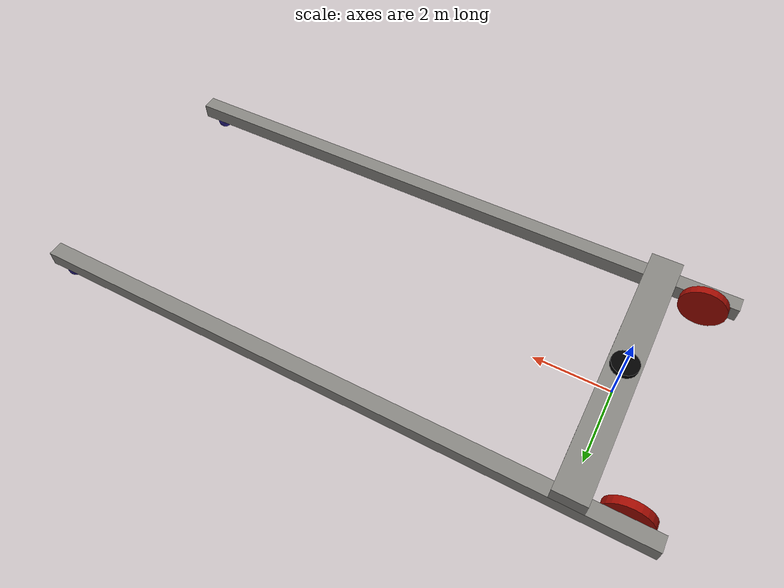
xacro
<?xml version="1.0"?>
<robot xmlns:xacro="http://www.ros.org/wiki/xacro">
  <link name="base_footprint"></link>
  <joint name="base_joint" type="fixed">
    <parent link="base_footprint" />
    <child link="base_link" />
    <origin xyz="0 0 1" rpy="0 0 0" />
  </joint>
  <link name="base_link">
    <visual>
      <origin xyz="0 0 0" rpy="0 0 0" />
      <geometry>
        <box size="0.8 7 0.4" />
      </geometry>
      <material name="base_link-material">
        <color rgba="0.5271151256969157 0.5209955731953768 0.5028864580233624 1" />
      </material>
    </visual>
    <collision>
      <origin xyz="0 0 0" rpy="0 0 0" />
      <geometry>
        <box size="0.8 7 0.4" />
      </geometry>
    </collision>
    <inertial>
      <origin xyz="0 0 0" rpy="0 0 0" />
      <mass value="1" />
      <inertia ixx="0.16666666666666666" ixy="0" ixz="0" iyy="0.16666666666666666" iyz="0" izz="0.16666666666666666" />
    </inertial>
  </link>
  <joint name="base_link_to_lidar" type="fixed">
    <parent link="base_link" />
    <child link="lidar" />
    <origin xyz="0 0 0.2569669071788341" rpy="0 0 0" />
  </joint>
  <link name="lidar">
    <visual>
      <origin xyz="0 0 0" rpy="0 0 0" />
      <geometry>
        <cylinder radius="0.333099402958804" length="0.13538975482266932" />
      </geometry>
      <material name="lidar-material">
        <color rgba="0 0 0 1" />
      </material>
    </visual>
    <collision>
      <origin xyz="0 0 0" rpy="0 0 0" />
      <geometry>
        <cylinder radius="0.333099402958804" length="0.13538975482266932" />
      </geometry>
    </collision>
    <inertial>
      <origin xyz="0 0 0" rpy="0 0 0" />
      <mass value="1" />
      <inertia ixx="0.3333333333333333" ixy="0" ixz="0" iyy="0.5" iyz="0" izz="0.3333333333333333" />
    </inertial>

        <sensor type="lidar" name="lidar">
            <always_on>true</always_on>
            <update_rate>5</update_rate>
            <origin>0 0 0.2569669071788341 0 0 0</origin>
            <ray>
                <scan>
                    <horizontal>
                        <samples>360</samples>
                        <resolution>1</resolution>
                        <min_angle>0</min_angle>
                        <max_angle>6.28</max_angle>
                    </horizontal>
                    <range>
                        <min>0.12</min>
                        <max>3.5</max>
                        <resolution>0.015</resolution>
                    </range>
                </scan>
                <noise>
                    <type>gaussian</type>
                    <mean>0</mean>
                    <stddev>0.01</stddev>
                </noise>
            </ray>
        </sensor>
      </link>
  <joint name="base_link_to_wheel_right" type="continuous">
    <parent link="base_link" />
    <child link="wheel_right" />
    <origin xyz="-1.2 3 -0.4" rpy="1.5707963267948963 0 0" />
    <axis xyz="0 0 1"/>
  </joint>
  <link name="wheel_right">
    <visual>
      <origin xyz="0 0 0" rpy="0 0 0" />
      <geometry>
        <cylinder radius="0.6" length="0.2" />
      </geometry>
      <material name="wheel_right-material">
        <color rgba="0.6375968739867731 0.04373502925049377 0.008023192982520563 1" />
      </material>
    </visual>
    <collision>
      <origin xyz="0 0 0" rpy="0 0 0" />
      <geometry>
        <cylinder radius="0.6" length="0.2" />
      </geometry>
    </collision>
    <inertial>
      <origin xyz="0 0 0" rpy="0 0 0" />
      <mass value="1" />
      <inertia ixx="0.3333333333333333" ixy="0" ixz="0" iyy="0.5" iyz="0" izz="0.3333333333333333" />
    </inertial>
  </link>
  <joint name="base_link_to_omniwheel" type="fixed">
    <parent link="base_link" />
    <child link="omniwheel" />
    <origin xyz="13.5 -3.3 -0.7" rpy="0 0 0" />
  </joint>
  <link name="omniwheel">
    <visual>
      <origin xyz="0 0 0" rpy="0 0 0" />
      <geometry>
        <sphere radius="0.2" />
      </geometry>
      <material name="omniwheel-material">
        <color rgba="0.14702726648767014 0.10461648408208657 0.4969329950515914 1" />
      </material>
    </visual>
    <collision>
      <origin xyz="0 0 0" rpy="0 0 0" />
      <geometry>
        <sphere radius="0.2" />
      </geometry>
    </collision>
    <inertial>
      <origin xyz="0 0 0" rpy="0 0 0" />
      <mass value="1" />
      <inertia ixx="0.4" ixy="0" ixz="0" iyy="0.4" iyz="0" izz="0.4" />
    </inertial>
  </link>
  <joint name="base_link_to_side1" type="fixed">
    <parent link="base_link" />
    <child link="side1" />
    <origin xyz="0 3.3 -0.4" rpy="0 0 0" />
  </joint>
  <link name="side1">
    <visual>
      <origin xyz="6 0 0" rpy="0 0 0" />
      <geometry>
        <box size="16 0.4 0.4" />
      </geometry>
      <material name="side1-material">
        <color rgba="0.5271151256969157 0.5209955731953768 0.5028864580233624 1" />
      </material>
    </visual>
    <collision>
      <origin xyz="12 0 0" rpy="0 0 0" />
      <geometry>
        <box size="16 0.4 0.4" />
      </geometry>
    </collision>
    <inertial>
      <origin xyz="12 0 0" rpy="0 0 0" />
      <mass value="1" />
      <inertia ixx="0.16666666666666666" ixy="0" ixz="0" iyy="0.16666666666666666" iyz="0" izz="0.16666666666666666" />
    </inertial>
  </link>
  <joint name="base_link_to_side2" type="fixed">
    <parent link="base_link" />
    <child link="side2" />
    <origin xyz="0 -3.3 -0.4" rpy="0 0 0" />
  </joint>
  <link name="side2">
    <visual>
      <origin xyz="6 0 0" rpy="0 0 0" />
      <geometry>
        <box size="16 0.4 0.4" />
      </geometry>
      <material name="side2-material">
        <color rgba="0.5271151256969157 0.5209955731953768 0.5028864580233624 1" />
      </material>
    </visual>
    <collision>
      <origin xyz="12 0 0" rpy="0 0 0" />
      <geometry>
        <box size="16 0.4 0.4" />
      </geometry>
    </collision>
    <inertial>
      <origin xyz="12 0 0" rpy="0 0 0" />
      <mass value="1" />
      <inertia ixx="0.16666666666666666" ixy="0" ixz="0" iyy="0.16666666666666666" iyz="0" izz="0.16666666666666666" />
    </inertial>
  </link>
  <joint name="base_link_to_wheel_right1" type="continuous">
    <parent link="base_link" />
    <child link="wheel_right1" />
    <origin xyz="-1.2 -3 -0.4" rpy="1.5707963267948963 0 0" />
    <axis xyz="0 0 1"/>
  </joint>
  <link name="wheel_right1">
    <visual>
      <origin xyz="0 0 0" rpy="0 0 0" />
      <geometry>
        <cylinder radius="0.6" length="0.2" />
      </geometry>
      <material name="wheel_right1-material">
        <color rgba="0.6375968739867731 0.04373502925049377 0.008023192982520563 1" />
      </material>
    </visual>
    <collision>
      <origin xyz="0 0 0" rpy="0 0 0" />
      <geometry>
        <cylinder radius="0.6" length="0.2" />
      </geometry>
    </collision>
    <inertial>
      <origin xyz="0 0 0" rpy="0 0 0" />
      <mass value="1" />
      <inertia ixx="0.3333333333333333" ixy="0" ixz="0" iyy="0.5" iyz="0" izz="0.3333333333333333" />
    </inertial>
  </link>
  <joint name="base_link_to_omniwheel1" type="fixed">
    <parent link="base_link" />
    <child link="omniwheel1" />
    <origin xyz="13.5 3.3 -0.7" rpy="0 0 0" />
  </joint>
  <link name="omniwheel1">
    <visual>
      <origin xyz="0 0 0" rpy="0 0 0" />
      <geometry>
        <sphere radius="0.2" />
      </geometry>
      <material name="omniwheel1-material">
        <color rgba="0.14702726648767014 0.10461648408208657 0.4969329950515914 1" />
      </material>
    </visual>
    <collision>
      <origin xyz="0 0 0" rpy="0 0 0" />
      <geometry>
        <sphere radius="0.2" />
      </geometry>
    </collision>
    <inertial>
      <origin xyz="0 0 0" rpy="0 0 0" />
      <mass value="1" />
      <inertia ixx="0.4" ixy="0" ixz="0" iyy="0.4" iyz="0" izz="0.4" />
    </inertial>
  </link>
</robot>
